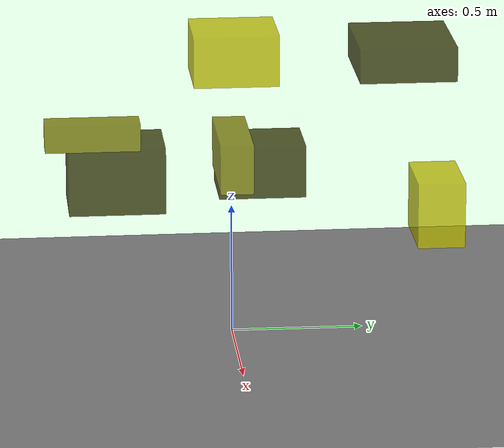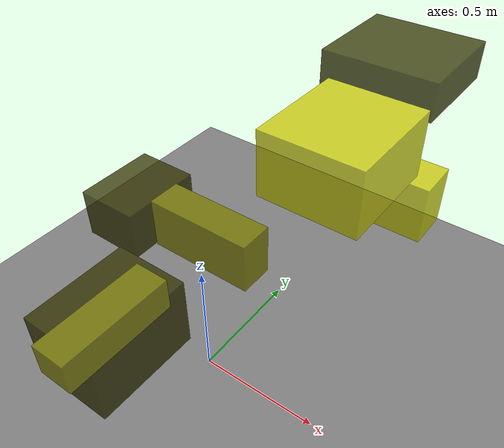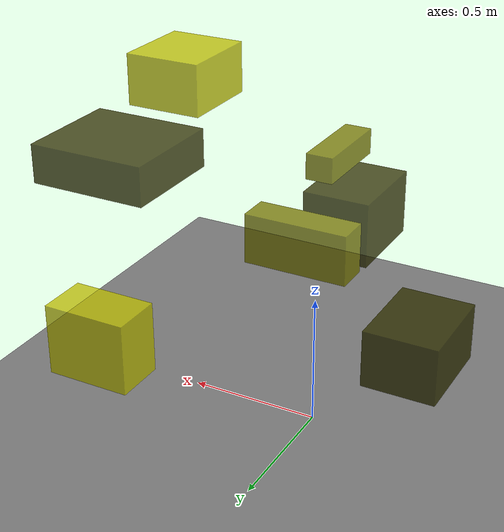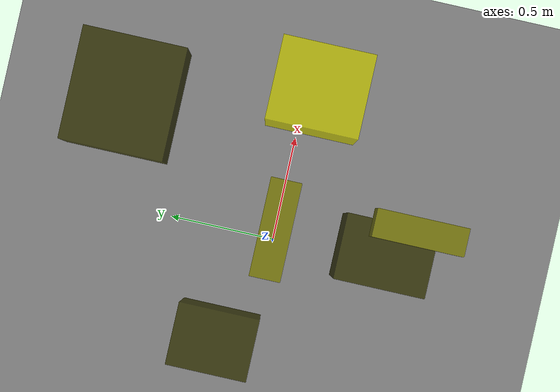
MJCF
<?xml version="1.0"?>
<mujoco model="obstacle_scene">
  <compiler angle="radian" coordinate="local"/>
  <option timestep="0.001" gravity="0 0 -9.81"/>

  <asset>
    <material name="obstacle_mat" rgba="0.8 0.8 0.0 0.8"/>
    <material name="ground_mat" rgba="0.5 0.5 0.5 1"/>
  </asset>

  <worldbody>
    <!-- Ground plane -->
    <geom name="ground" type="plane" size="3 3 0.1" material="ground_mat"/>

    <!-- Obstacles -->
    <body name="obstacle_0" pos="0.387370 0.593535 1.195600">
      <geom name="obs_0" type="box" size="0.192425 0.176817 0.063008" rgba="0.2 0.2 0.0 0.8"/>
    </body>
    <body name="obstacle_1" pos="0.165514 -0.533161 0.844665">
      <geom name="obs_1" type="box" size="0.054893 0.176671 0.051902" rgba="0.5 0.5 0.0 0.8"/>
    </body>
    <body name="obstacle_2" pos="0.536867 -0.038053 1.251407">
      <geom name="obs_2" type="box" size="0.138618 0.153135 0.092490" rgba="0.8 0.8 0.0 0.8"/>
    </body>
    <body name="obstacle_3" pos="-0.449801 0.149395 0.525852">
      <geom name="obs_3" type="box" size="0.129798 0.168618 0.102582" rgba="0.2 0.2 0.0 0.8"/>
    </body>
    <body name="obstacle_4" pos="0.055457 0.000567 0.717566">
      <geom name="obs_4" type="box" size="0.195660 0.061632 0.094326" rgba="0.5 0.5 0.0 0.8"/>
    </body>
    <body name="obstacle_5" pos="0.406486 0.726034 0.614098">
      <geom name="obs_5" type="box" size="0.143491 0.086558 0.122344" rgba="0.8 0.8 0.0 0.8"/>
    </body>
    <body name="obstacle_6" pos="0.050735 -0.441332 0.659573">
      <geom name="obs_6" type="box" size="0.131394 0.180877 0.126591" rgba="0.2 0.2 0.0 0.8"/>
    </body>
  </worldbody>
</mujoco>
